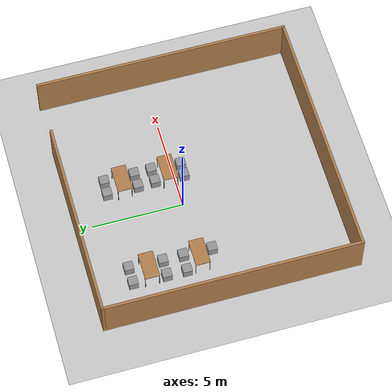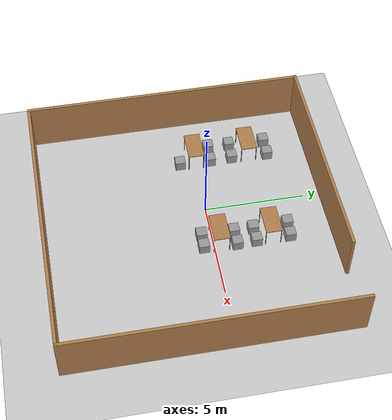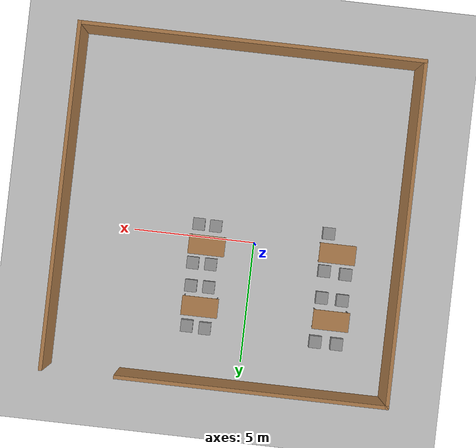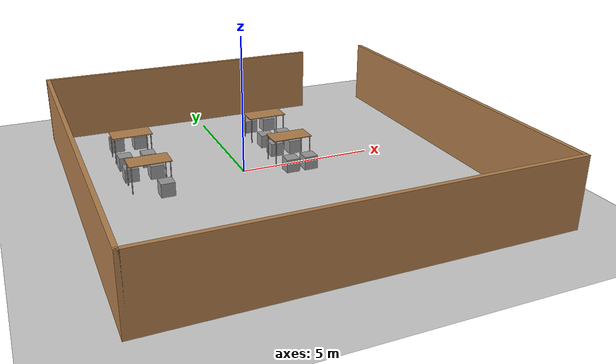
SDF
<sdf version="1.7">
 <world name="default">
  <model name="ground_plane">
   <static>1</static>
   <link name="link">
    <collision name="collision">
     <geometry><plane><normal>0 0 1</normal><size>100 100</size></plane></geometry>
     <surface><friction><ode><mu>100</mu><mu2>50</mu2></ode></friction></surface>
    </collision>
    <visual name="visual">
     <cast_shadows>0</cast_shadows>
     <geometry><plane><normal>0 0 1</normal><size>100 100</size></plane></geometry>
     <material>
      <script><uri>file://media/materials/scripts/gazebo.material</uri><name>Gazebo/Grey</name></script>
     </material>
    </visual>
   </link>
  </model>
  <model name="wall">
   <pose>0.983985 0.059169 0 0 -0 0</pose>
   <link name="Wall_20">
    <collision name="Wall_20_Collision">
     <geometry><box><size>11 0.15 2.5</size></box></geometry>
     <pose>0 0 1.25 0 -0 0</pose>
    </collision>
    <visual name="Wall_20_Visual">
     <pose>0 0 1.25 0 -0 0</pose>
     <geometry><box><size>11 0.15 2.5</size></box></geometry>
     <material>
      <script><uri>file://media/materials/scripts/gazebo.material</uri><name>Gazebo/Wood</name></script>
      <ambient>1 1 1 1</ambient>
     </material>
     <meta><layer>0</layer></meta>
    </visual>
    <pose>-1.5 5.81505 0 0 -0 0</pose>
   </link>
   <link name="Wall_22">
    <collision name="Wall_22_Collision">
     <geometry><box><size>14 0.15 2.5</size></box></geometry>
     <pose>0 0 1.25 0 -0 0</pose>
    </collision>
    <visual name="Wall_22_Visual">
     <pose>0 0 1.25 0 -0 0</pose>
     <geometry><box><size>14 0.15 2.5</size></box></geometry>
     <material>
      <script><uri>file://media/materials/scripts/gazebo.material</uri><name>Gazebo/Wood</name></script>
      <ambient>1 1 1 1</ambient>
     </material>
     <meta><layer>0</layer></meta>
    </visual>
    <pose>-6.925 -1.10995 0 0 -0 -1.5708</pose>
   </link>
   <link name="Wall_23">
    <collision name="Wall_23_Collision">
     <geometry><box><size>14 0.15 2.5</size></box></geometry>
     <pose>0 0 1.25 0 -0 0</pose>
    </collision>
    <visual name="Wall_23_Visual">
     <pose>0 0 1.25 0 -0 0</pose>
     <geometry><box><size>14 0.15 2.5</size></box></geometry>
     <material>
      <script><uri>file://media/materials/scripts/gazebo.material</uri><name>Gazebo/Wood</name></script>
      <ambient>1 1 1 1</ambient>
     </material>
     <meta><layer>0</layer></meta>
    </visual>
    <pose>-0 -8.03495 0 0 -0 0</pose>
   </link>
   <link name="Wall_24">
    <collision name="Wall_24_Collision">
     <geometry><box><size>14 0.15 2.5</size></box></geometry>
     <pose>0 0 1.25 0 -0 0</pose>
    </collision>
    <visual name="Wall_24_Visual">
     <pose>0 0 1.25 0 -0 0</pose>
     <geometry><box><size>14 0.15 2.5</size></box></geometry>
     <material>
      <script><uri>file://media/materials/scripts/gazebo.material</uri><name>Gazebo/Wood</name></script>
      <ambient>1 1 1 1</ambient>
     </material>
     <meta><layer>0</layer></meta>
    </visual>
    <pose>6.925 -1.10995 0 0 -0 1.5708</pose>
   </link>
   <static>1</static>
  </model>
  <model name="table">
   <static>1</static>
   <link name="link">
    <collision name="surface">
     <pose>0 0 1 0 -0 0</pose>
     <geometry><box><size>1.5 0.8 0.03</size></box></geometry>
     <surface><friction><ode><mu>0.6</mu><mu2>0.6</mu2></ode></friction></surface>
    </collision>
    <visual name="visual1">
     <pose>0 0 1 0 -0 0</pose>
     <geometry><box><size>1.5 0.8 0.03</size></box></geometry>
     <material>
      <script><uri>file://media/materials/scripts/gazebo.material</uri><name>Gazebo/Wood</name></script>
     </material>
    </visual>
    <collision name="front_left_leg">
     <pose>0.68 0.38 0.5 0 -0 0</pose>
     <geometry><cylinder><radius>0.02</radius><length>1</length></cylinder></geometry>
    </collision>
    <visual name="front_left_leg">
     <pose>0.68 0.38 0.5 0 -0 0</pose>
     <geometry><cylinder><radius>0.02</radius><length>1</length></cylinder></geometry>
     <material>
      <script><uri>file://media/materials/scripts/gazebo.material</uri><name>Gazebo/Grey</name></script>
     </material>
    </visual>
    <collision name="front_right_leg">
     <pose>0.68 -0.38 0.5 0 -0 0</pose>
     <geometry><cylinder><radius>0.02</radius><length>1</length></cylinder></geometry>
    </collision>
    <visual name="front_right_leg">
     <pose>0.68 -0.38 0.5 0 -0 0</pose>
     <geometry><cylinder><radius>0.02</radius><length>1</length></cylinder></geometry>
     <material>
      <script><uri>file://media/materials/scripts/gazebo.material</uri><name>Gazebo/Grey</name></script>
     </material>
    </visual>
    <collision name="back_right_leg">
     <pose>-0.68 -0.38 0.5 0 -0 0</pose>
     <geometry><cylinder><radius>0.02</radius><length>1</length></cylinder></geometry>
    </collision>
    <visual name="back_right_leg">
     <pose>-0.68 -0.38 0.5 0 -0 0</pose>
     <geometry><cylinder><radius>0.02</radius><length>1</length></cylinder></geometry>
     <material>
      <script><uri>file://media/materials/scripts/gazebo.material</uri><name>Gazebo/Grey</name></script>
     </material>
    </visual>
    <collision name="back_left_leg">
     <pose>-0.68 0.38 0.5 0 -0 0</pose>
     <geometry><cylinder><radius>0.02</radius><length>1</length></cylinder></geometry>
    </collision>
    <visual name="back_left_leg">
     <pose>-0.68 0.38 0.5 0 -0 0</pose>
     <geometry><cylinder><radius>0.02</radius><length>1</length></cylinder></geometry>
     <material>
      <script><uri>file://media/materials/scripts/gazebo.material</uri><name>Gazebo/Grey</name></script>
     </material>
    </visual>
   </link>
   <pose>-3.47502 2.80733 0 0 -0 0</pose>
  </model>
  <model name="table_0">
   <static>1</static>
   <link name="link">
    <collision name="surface">
     <pose>0 0 1 0 -0 0</pose>
     <geometry><box><size>1.5 0.8 0.03</size></box></geometry>
     <surface><friction><ode><mu>0.6</mu><mu2>0.6</mu2></ode></friction></surface>
    </collision>
    <visual name="visual1">
     <pose>0 0 1 0 -0 0</pose>
     <geometry><box><size>1.5 0.8 0.03</size></box></geometry>
     <material>
      <script><uri>file://media/materials/scripts/gazebo.material</uri><name>Gazebo/Wood</name></script>
     </material>
    </visual>
    <collision name="front_left_leg">
     <pose>0.68 0.38 0.5 0 -0 0</pose>
     <geometry><cylinder><radius>0.02</radius><length>1</length></cylinder></geometry>
    </collision>
    <visual name="front_left_leg">
     <pose>0.68 0.38 0.5 0 -0 0</pose>
     <geometry><cylinder><radius>0.02</radius><length>1</length></cylinder></geometry>
     <material>
      <script><uri>file://media/materials/scripts/gazebo.material</uri><name>Gazebo/Grey</name></script>
     </material>
    </visual>
    <collision name="front_right_leg">
     <pose>0.68 -0.38 0.5 0 -0 0</pose>
     <geometry><cylinder><radius>0.02</radius><length>1</length></cylinder></geometry>
    </collision>
    <visual name="front_right_leg">
     <pose>0.68 -0.38 0.5 0 -0 0</pose>
     <geometry><cylinder><radius>0.02</radius><length>1</length></cylinder></geometry>
     <material>
      <script><uri>file://media/materials/scripts/gazebo.material</uri><name>Gazebo/Grey</name></script>
     </material>
    </visual>
    <collision name="back_right_leg">
     <pose>-0.68 -0.38 0.5 0 -0 0</pose>
     <geometry><cylinder><radius>0.02</radius><length>1</length></cylinder></geometry>
    </collision>
    <visual name="back_right_leg">
     <pose>-0.68 -0.38 0.5 0 -0 0</pose>
     <geometry><cylinder><radius>0.02</radius><length>1</length></cylinder></geometry>
     <material>
      <script><uri>file://media/materials/scripts/gazebo.material</uri><name>Gazebo/Grey</name></script>
     </material>
    </visual>
    <collision name="back_left_leg">
     <pose>-0.68 0.38 0.5 0 -0 0</pose>
     <geometry><cylinder><radius>0.02</radius><length>1</length></cylinder></geometry>
    </collision>
    <visual name="back_left_leg">
     <pose>-0.68 0.38 0.5 0 -0 0</pose>
     <geometry><cylinder><radius>0.02</radius><length>1</length></cylinder></geometry>
     <material>
      <script><uri>file://media/materials/scripts/gazebo.material</uri><name>Gazebo/Grey</name></script>
     </material>
    </visual>
   </link>
   <pose>-3.43785 0.065077 0 0 -0 0</pose>
  </model>
  <model name="table_3">
   <static>1</static>
   <link name="link">
    <collision name="surface">
     <pose>0 0 1 0 -0 0</pose>
     <geometry><box><size>1.5 0.8 0.03</size></box></geometry>
     <surface><friction><ode><mu>0.6</mu><mu2>0.6</mu2></ode></friction></surface>
    </collision>
    <visual name="visual1">
     <pose>0 0 1 0 -0 0</pose>
     <geometry><box><size>1.5 0.8 0.03</size></box></geometry>
     <material>
      <script><uri>file://media/materials/scripts/gazebo.material</uri><name>Gazebo/Wood</name></script>
     </material>
    </visual>
    <collision name="front_left_leg">
     <pose>0.68 0.38 0.5 0 -0 0</pose>
     <geometry><cylinder><radius>0.02</radius><length>1</length></cylinder></geometry>
    </collision>
    <visual name="front_left_leg">
     <pose>0.68 0.38 0.5 0 -0 0</pose>
     <geometry><cylinder><radius>0.02</radius><length>1</length></cylinder></geometry>
     <material>
      <script><uri>file://media/materials/scripts/gazebo.material</uri><name>Gazebo/Grey</name></script>
     </material>
    </visual>
    <collision name="front_right_leg">
     <pose>0.68 -0.38 0.5 0 -0 0</pose>
     <geometry><cylinder><radius>0.02</radius><length>1</length></cylinder></geometry>
    </collision>
    <visual name="front_right_leg">
     <pose>0.68 -0.38 0.5 0 -0 0</pose>
     <geometry><cylinder><radius>0.02</radius><length>1</length></cylinder></geometry>
     <material>
      <script><uri>file://media/materials/scripts/gazebo.material</uri><name>Gazebo/Grey</name></script>
     </material>
    </visual>
    <collision name="back_right_leg">
     <pose>-0.68 -0.38 0.5 0 -0 0</pose>
     <geometry><cylinder><radius>0.02</radius><length>1</length></cylinder></geometry>
    </collision>
    <visual name="back_right_leg">
     <pose>-0.68 -0.38 0.5 0 -0 0</pose>
     <geometry><cylinder><radius>0.02</radius><length>1</length></cylinder></geometry>
     <material>
      <script><uri>file://media/materials/scripts/gazebo.material</uri><name>Gazebo/Grey</name></script>
     </material>
    </visual>
    <collision name="back_left_leg">
     <pose>-0.68 0.38 0.5 0 -0 0</pose>
     <geometry><cylinder><radius>0.02</radius><length>1</length></cylinder></geometry>
    </collision>
    <visual name="back_left_leg">
     <pose>-0.68 0.38 0.5 0 -0 0</pose>
     <geometry><cylinder><radius>0.02</radius><length>1</length></cylinder></geometry>
     <material>
      <script><uri>file://media/materials/scripts/gazebo.material</uri><name>Gazebo/Grey</name></script>
     </material>
    </visual>
   </link>
   <pose>1.92457 2.83936 0 0 -0 0</pose>
  </model>
  <model name="table_4">
   <static>1</static>
   <link name="link">
    <collision name="surface">
     <pose>0 0 1 0 -0 0</pose>
     <geometry><box><size>1.5 0.8 0.03</size></box></geometry>
     <surface><friction><ode><mu>0.6</mu><mu2>0.6</mu2></ode></friction></surface>
    </collision>
    <visual name="visual1">
     <pose>0 0 1 0 -0 0</pose>
     <geometry><box><size>1.5 0.8 0.03</size></box></geometry>
     <material>
      <script><uri>file://media/materials/scripts/gazebo.material</uri><name>Gazebo/Wood</name></script>
     </material>
    </visual>
    <collision name="front_left_leg">
     <pose>0.68 0.38 0.5 0 -0 0</pose>
     <geometry><cylinder><radius>0.02</radius><length>1</length></cylinder></geometry>
    </collision>
    <visual name="front_left_leg">
     <pose>0.68 0.38 0.5 0 -0 0</pose>
     <geometry><cylinder><radius>0.02</radius><length>1</length></cylinder></geometry>
     <material>
      <script><uri>file://media/materials/scripts/gazebo.material</uri><name>Gazebo/Grey</name></script>
     </material>
    </visual>
    <collision name="front_right_leg">
     <pose>0.68 -0.38 0.5 0 -0 0</pose>
     <geometry><cylinder><radius>0.02</radius><length>1</length></cylinder></geometry>
    </collision>
    <visual name="front_right_leg">
     <pose>0.68 -0.38 0.5 0 -0 0</pose>
     <geometry><cylinder><radius>0.02</radius><length>1</length></cylinder></geometry>
     <material>
      <script><uri>file://media/materials/scripts/gazebo.material</uri><name>Gazebo/Grey</name></script>
     </material>
    </visual>
    <collision name="back_right_leg">
     <pose>-0.68 -0.38 0.5 0 -0 0</pose>
     <geometry><cylinder><radius>0.02</radius><length>1</length></cylinder></geometry>
    </collision>
    <visual name="back_right_leg">
     <pose>-0.68 -0.38 0.5 0 -0 0</pose>
     <geometry><cylinder><radius>0.02</radius><length>1</length></cylinder></geometry>
     <material>
      <script><uri>file://media/materials/scripts/gazebo.material</uri><name>Gazebo/Grey</name></script>
     </material>
    </visual>
    <collision name="back_left_leg">
     <pose>-0.68 0.38 0.5 0 -0 0</pose>
     <geometry><cylinder><radius>0.02</radius><length>1</length></cylinder></geometry>
    </collision>
    <visual name="back_left_leg">
     <pose>-0.68 0.38 0.5 0 -0 0</pose>
     <geometry><cylinder><radius>0.02</radius><length>1</length></cylinder></geometry>
     <material>
      <script><uri>file://media/materials/scripts/gazebo.material</uri><name>Gazebo/Grey</name></script>
     </material>
    </visual>
   </link>
   <pose>1.92033 0.311512 0 0 -0 0</pose>
  </model>
  <model name="chair">
   <link name="link">
    <inertial>
     <mass>1</mass>
     <inertia>
      <ixx>0.166667</ixx>
      <ixy>0</ixy>
      <ixz>0</ixz>
      <iyy>0.166667</iyy>
      <iyz>0</iyz>
      <izz>0.166667</izz>
     </inertia>
    </inertial>
    <visual name="visual">
     <geometry><box><size>0.5 0.5 0.5</size></box></geometry>
     <material>
      <script><name>Gazebo/Grey</name><uri>file://media/materials/scripts/gazebo.material</uri></script>
      <shader type="pixel"><normal_map>__default__</normal_map></shader>
      <ambient>0.3 0.3 0.3 1</ambient>
      <diffuse>0.7 0.7 0.7 1</diffuse>
      <specular>0.01 0.01 0.01 1</specular>
      <emissive>0 0 0 1</emissive>
     </material>
    </visual>
    <collision name="collision">
     <geometry><box><size>0.5 0.5 0.5</size></box></geometry>
     <surface>
      <friction>
       <ode><mu>1</mu><mu2>1</mu2><fdir1>0 0 0</fdir1><slip1>0</slip1><slip2>0</slip2></ode>
       <torsional>
        <coefficient>1</coefficient>
        <patch_radius>0</patch_radius>
        <surface_radius>0</surface_radius>
        <use_patch_radius>1</use_patch_radius>
        <ode><slip>0</slip></ode>
       </torsional>
      </friction>
      <bounce><restitution_coefficient>0</restitution_coefficient><threshold>1e+06</threshold></bounce>
      <contact>
       <collide_without_contact>0</collide_without_contact>
       <collide_without_contact_bitmask>1</collide_without_contact_bitmask>
       <collide_bitmask>1</collide_bitmask>
       <ode>
        <soft_cfm>0</soft_cfm>
        <soft_erp>0.2</soft_erp>
        <kp>1e+13</kp>
        <kd>1</kd>
        <max_vel>0.01</max_vel>
        <min_depth>0</min_depth>
       </ode>
       <bullet>
        <split_impulse>1</split_impulse>
        <split_impulse_penetration_threshold>-0.01</split_impulse_penetration_threshold>
        <soft_cfm>0</soft_cfm>
        <soft_erp>0.2</soft_erp>
        <kp>1e+13</kp>
        <kd>1</kd>
       </bullet>
      </contact>
     </surface>
    </collision>
   </link>
   <static>0</static>
   <pose>-3.86503 3.7887 0.25 0 -0 0</pose>
  </model>
  <model name="chair_0">
   <link name="link">
    <inertial>
     <mass>1</mass>
     <inertia>
      <ixx>0.166667</ixx>
      <ixy>0</ixy>
      <ixz>0</ixz>
      <iyy>0.166667</iyy>
      <iyz>0</iyz>
      <izz>0.166667</izz>
     </inertia>
    </inertial>
    <visual name="visual">
     <geometry><box><size>0.5 0.5 0.5</size></box></geometry>
     <material>
      <script><name>Gazebo/Grey</name><uri>file://media/materials/scripts/gazebo.material</uri></script>
      <shader type="pixel"><normal_map>__default__</normal_map></shader>
      <ambient>0.3 0.3 0.3 1</ambient>
      <diffuse>0.7 0.7 0.7 1</diffuse>
      <specular>0.01 0.01 0.01 1</specular>
      <emissive>0 0 0 1</emissive>
     </material>
    </visual>
    <collision name="collision">
     <geometry><box><size>0.5 0.5 0.5</size></box></geometry>
     <surface>
      <friction>
       <ode><mu>1</mu><mu2>1</mu2><fdir1>0 0 0</fdir1><slip1>0</slip1><slip2>0</slip2></ode>
       <torsional>
        <coefficient>1</coefficient>
        <patch_radius>0</patch_radius>
        <surface_radius>0</surface_radius>
        <use_patch_radius>1</use_patch_radius>
        <ode><slip>0</slip></ode>
       </torsional>
      </friction>
      <bounce><restitution_coefficient>0</restitution_coefficient><threshold>1e+06</threshold></bounce>
      <contact>
       <collide_without_contact>0</collide_without_contact>
       <collide_without_contact_bitmask>1</collide_without_contact_bitmask>
       <collide_bitmask>1</collide_bitmask>
       <ode>
        <soft_cfm>0</soft_cfm>
        <soft_erp>0.2</soft_erp>
        <kp>1e+13</kp>
        <kd>1</kd>
        <max_vel>0.01</max_vel>
        <min_depth>0</min_depth>
       </ode>
       <bullet>
        <split_impulse>1</split_impulse>
        <split_impulse_penetration_threshold>-0.01</split_impulse_penetration_threshold>
        <soft_cfm>0</soft_cfm>
        <soft_erp>0.2</soft_erp>
        <kp>1e+13</kp>
        <kd>1</kd>
       </bullet>
      </contact>
     </surface>
    </collision>
   </link>
   <static>0</static>
   <pose>-2.97801 3.78938 0.25 0 -0 0</pose>
  </model>
  <model name="chair_1">
   <link name="link">
    <inertial>
     <mass>1</mass>
     <inertia>
      <ixx>0.166667</ixx>
      <ixy>0</ixy>
      <ixz>0</ixz>
      <iyy>0.166667</iyy>
      <iyz>0</iyz>
      <izz>0.166667</izz>
     </inertia>
    </inertial>
    <visual name="visual">
     <geometry><box><size>0.5 0.5 0.5</size></box></geometry>
     <material>
      <script><name>Gazebo/Grey</name><uri>file://media/materials/scripts/gazebo.material</uri></script>
      <shader type="pixel"><normal_map>__default__</normal_map></shader>
      <ambient>0.3 0.3 0.3 1</ambient>
      <diffuse>0.7 0.7 0.7 1</diffuse>
      <specular>0.01 0.01 0.01 1</specular>
      <emissive>0 0 0 1</emissive>
     </material>
    </visual>
    <collision name="collision">
     <geometry><box><size>0.5 0.5 0.5</size></box></geometry>
     <surface>
      <friction>
       <ode><mu>1</mu><mu2>1</mu2><fdir1>0 0 0</fdir1><slip1>0</slip1><slip2>0</slip2></ode>
       <torsional>
        <coefficient>1</coefficient>
        <patch_radius>0</patch_radius>
        <surface_radius>0</surface_radius>
        <use_patch_radius>1</use_patch_radius>
        <ode><slip>0</slip></ode>
       </torsional>
      </friction>
      <bounce><restitution_coefficient>0</restitution_coefficient><threshold>1e+06</threshold></bounce>
      <contact>
       <collide_without_contact>0</collide_without_contact>
       <collide_without_contact_bitmask>1</collide_without_contact_bitmask>
       <collide_bitmask>1</collide_bitmask>
       <ode>
        <soft_cfm>0</soft_cfm>
        <soft_erp>0.2</soft_erp>
        <kp>1e+13</kp>
        <kd>1</kd>
        <max_vel>0.01</max_vel>
        <min_depth>0</min_depth>
       </ode>
       <bullet>
        <split_impulse>1</split_impulse>
        <split_impulse_penetration_threshold>-0.01</split_impulse_penetration_threshold>
        <soft_cfm>0</soft_cfm>
        <soft_erp>0.2</soft_erp>
        <kp>1e+13</kp>
        <kd>1</kd>
       </bullet>
      </contact>
     </surface>
    </collision>
   </link>
   <static>0</static>
   <pose>-3.90663 1.96762 0.25 0 -0 0</pose>
  </model>
  <model name="chair_2">
   <link name="link">
    <inertial>
     <mass>1</mass>
     <inertia>
      <ixx>0.166667</ixx>
      <ixy>0</ixy>
      <ixz>0</ixz>
      <iyy>0.166667</iyy>
      <iyz>0</iyz>
      <izz>0.166667</izz>
     </inertia>
    </inertial>
    <visual name="visual">
     <geometry><box><size>0.5 0.5 0.5</size></box></geometry>
     <material>
      <script><name>Gazebo/Grey</name><uri>file://media/materials/scripts/gazebo.material</uri></script>
      <shader type="pixel"><normal_map>__default__</normal_map></shader>
      <ambient>0.3 0.3 0.3 1</ambient>
      <diffuse>0.7 0.7 0.7 1</diffuse>
      <specular>0.01 0.01 0.01 1</specular>
      <emissive>0 0 0 1</emissive>
     </material>
    </visual>
    <collision name="collision">
     <geometry><box><size>0.5 0.5 0.5</size></box></geometry>
     <surface>
      <friction>
       <ode><mu>1</mu><mu2>1</mu2><fdir1>0 0 0</fdir1><slip1>0</slip1><slip2>0</slip2></ode>
       <torsional>
        <coefficient>1</coefficient>
        <patch_radius>0</patch_radius>
        <surface_radius>0</surface_radius>
        <use_patch_radius>1</use_patch_radius>
        <ode><slip>0</slip></ode>
       </torsional>
      </friction>
      <bounce><restitution_coefficient>0</restitution_coefficient><threshold>1e+06</threshold></bounce>
      <contact>
       <collide_without_contact>0</collide_without_contact>
       <collide_without_contact_bitmask>1</collide_without_contact_bitmask>
       <collide_bitmask>1</collide_bitmask>
       <ode>
        <soft_cfm>0</soft_cfm>
        <soft_erp>0.2</soft_erp>
        <kp>1e+13</kp>
        <kd>1</kd>
        <max_vel>0.01</max_vel>
        <min_depth>0</min_depth>
       </ode>
       <bullet>
        <split_impulse>1</split_impulse>
        <split_impulse_penetration_threshold>-0.01</split_impulse_penetration_threshold>
        <soft_cfm>0</soft_cfm>
        <soft_erp>0.2</soft_erp>
        <kp>1e+13</kp>
        <kd>1</kd>
       </bullet>
      </contact>
     </surface>
    </collision>
   </link>
   <static>0</static>
   <pose>-3.04817 1.94765 0.25 0 -0 0</pose>
  </model>
  <model name="chair_4">
   <link name="link">
    <inertial>
     <mass>1</mass>
     <inertia>
      <ixx>0.166667</ixx>
      <ixy>0</ixy>
      <ixz>0</ixz>
      <iyy>0.166667</iyy>
      <iyz>0</iyz>
      <izz>0.166667</izz>
     </inertia>
    </inertial>
    <visual name="visual">
     <geometry><box><size>0.5 0.5 0.5</size></box></geometry>
     <material>
      <script><name>Gazebo/Grey</name><uri>file://media/materials/scripts/gazebo.material</uri></script>
      <shader type="pixel"><normal_map>__default__</normal_map></shader>
      <ambient>0.3 0.3 0.3 1</ambient>
      <diffuse>0.7 0.7 0.7 1</diffuse>
      <specular>0.01 0.01 0.01 1</specular>
      <emissive>0 0 0 1</emissive>
     </material>
    </visual>
    <collision name="collision">
     <geometry><box><size>0.5 0.5 0.5</size></box></geometry>
     <surface>
      <friction>
       <ode><mu>1</mu><mu2>1</mu2><fdir1>0 0 0</fdir1><slip1>0</slip1><slip2>0</slip2></ode>
       <torsional>
        <coefficient>1</coefficient>
        <patch_radius>0</patch_radius>
        <surface_radius>0</surface_radius>
        <use_patch_radius>1</use_patch_radius>
        <ode><slip>0</slip></ode>
       </torsional>
      </friction>
      <bounce><restitution_coefficient>0</restitution_coefficient><threshold>1e+06</threshold></bounce>
      <contact>
       <collide_without_contact>0</collide_without_contact>
       <collide_without_contact_bitmask>1</collide_without_contact_bitmask>
       <collide_bitmask>1</collide_bitmask>
       <ode>
        <soft_cfm>0</soft_cfm>
        <soft_erp>0.2</soft_erp>
        <kp>1e+13</kp>
        <kd>1</kd>
        <max_vel>0.01</max_vel>
        <min_depth>0</min_depth>
       </ode>
       <bullet>
        <split_impulse>1</split_impulse>
        <split_impulse_penetration_threshold>-0.01</split_impulse_penetration_threshold>
        <soft_cfm>0</soft_cfm>
        <soft_erp>0.2</soft_erp>
        <kp>1e+13</kp>
        <kd>1</kd>
       </bullet>
      </contact>
     </surface>
    </collision>
   </link>
   <static>0</static>
   <pose>-3.04257 -0.73259 0.25 0 -0 0</pose>
  </model>
  <model name="chair_5">
   <link name="link">
    <inertial>
     <mass>1</mass>
     <inertia>
      <ixx>0.166667</ixx>
      <ixy>0</ixy>
      <ixz>0</ixz>
      <iyy>0.166667</iyy>
      <iyz>0</iyz>
      <izz>0.166667</izz>
     </inertia>
    </inertial>
    <visual name="visual">
     <geometry><box><size>0.5 0.5 0.5</size></box></geometry>
     <material>
      <script><name>Gazebo/Grey</name><uri>file://media/materials/scripts/gazebo.material</uri></script>
      <shader type="pixel"><normal_map>__default__</normal_map></shader>
      <ambient>0.3 0.3 0.3 1</ambient>
      <diffuse>0.7 0.7 0.7 1</diffuse>
      <specular>0.01 0.01 0.01 1</specular>
      <emissive>0 0 0 1</emissive>
     </material>
    </visual>
    <collision name="collision">
     <geometry><box><size>0.5 0.5 0.5</size></box></geometry>
     <surface>
      <friction>
       <ode><mu>1</mu><mu2>1</mu2><fdir1>0 0 0</fdir1><slip1>0</slip1><slip2>0</slip2></ode>
       <torsional>
        <coefficient>1</coefficient>
        <patch_radius>0</patch_radius>
        <surface_radius>0</surface_radius>
        <use_patch_radius>1</use_patch_radius>
        <ode><slip>0</slip></ode>
       </torsional>
      </friction>
      <bounce><restitution_coefficient>0</restitution_coefficient><threshold>1e+06</threshold></bounce>
      <contact>
       <collide_without_contact>0</collide_without_contact>
       <collide_without_contact_bitmask>1</collide_without_contact_bitmask>
       <collide_bitmask>1</collide_bitmask>
       <ode>
        <soft_cfm>0</soft_cfm>
        <soft_erp>0.2</soft_erp>
        <kp>1e+13</kp>
        <kd>1</kd>
        <max_vel>0.01</max_vel>
        <min_depth>0</min_depth>
       </ode>
       <bullet>
        <split_impulse>1</split_impulse>
        <split_impulse_penetration_threshold>-0.01</split_impulse_penetration_threshold>
        <soft_cfm>0</soft_cfm>
        <soft_erp>0.2</soft_erp>
        <kp>1e+13</kp>
        <kd>1</kd>
       </bullet>
      </contact>
     </surface>
    </collision>
   </link>
   <static>0</static>
   <pose>-3.92308 0.880823 0.25 0 -0 0</pose>
  </model>
  <model name="chair_6">
   <link name="link">
    <inertial>
     <mass>1</mass>
     <inertia>
      <ixx>0.166667</ixx>
      <ixy>0</ixy>
      <ixz>0</ixz>
      <iyy>0.166667</iyy>
      <iyz>0</iyz>
      <izz>0.166667</izz>
     </inertia>
    </inertial>
    <visual name="visual">
     <geometry><box><size>0.5 0.5 0.5</size></box></geometry>
     <material>
      <script><name>Gazebo/Grey</name><uri>file://media/materials/scripts/gazebo.material</uri></script>
      <shader type="pixel"><normal_map>__default__</normal_map></shader>
      <ambient>0.3 0.3 0.3 1</ambient>
      <diffuse>0.7 0.7 0.7 1</diffuse>
      <specular>0.01 0.01 0.01 1</specular>
      <emissive>0 0 0 1</emissive>
     </material>
    </visual>
    <collision name="collision">
     <geometry><box><size>0.5 0.5 0.5</size></box></geometry>
     <surface>
      <friction>
       <ode><mu>1</mu><mu2>1</mu2><fdir1>0 0 0</fdir1><slip1>0</slip1><slip2>0</slip2></ode>
       <torsional>
        <coefficient>1</coefficient>
        <patch_radius>0</patch_radius>
        <surface_radius>0</surface_radius>
        <use_patch_radius>1</use_patch_radius>
        <ode><slip>0</slip></ode>
       </torsional>
      </friction>
      <bounce><restitution_coefficient>0</restitution_coefficient><threshold>1e+06</threshold></bounce>
      <contact>
       <collide_without_contact>0</collide_without_contact>
       <collide_without_contact_bitmask>1</collide_without_contact_bitmask>
       <collide_bitmask>1</collide_bitmask>
       <ode>
        <soft_cfm>0</soft_cfm>
        <soft_erp>0.2</soft_erp>
        <kp>1e+13</kp>
        <kd>1</kd>
        <max_vel>0.01</max_vel>
        <min_depth>0</min_depth>
       </ode>
       <bullet>
        <split_impulse>1</split_impulse>
        <split_impulse_penetration_threshold>-0.01</split_impulse_penetration_threshold>
        <soft_cfm>0</soft_cfm>
        <soft_erp>0.2</soft_erp>
        <kp>1e+13</kp>
        <kd>1</kd>
       </bullet>
      </contact>
     </surface>
    </collision>
   </link>
   <static>0</static>
   <pose>-3.02496 0.836207 0.25 0 -0 0</pose>
  </model>
  <model name="chair_23">
   <link name="link">
    <inertial>
     <mass>1</mass>
     <inertia>
      <ixx>0.166667</ixx>
      <ixy>0</ixy>
      <ixz>0</ixz>
      <iyy>0.166667</iyy>
      <iyz>0</iyz>
      <izz>0.166667</izz>
     </inertia>
    </inertial>
    <visual name="visual">
     <geometry><box><size>0.5 0.5 0.5</size></box></geometry>
     <material>
      <script><name>Gazebo/Grey</name><uri>file://media/materials/scripts/gazebo.material</uri></script>
      <shader type="pixel"><normal_map>__default__</normal_map></shader>
      <ambient>0.3 0.3 0.3 1</ambient>
      <diffuse>0.7 0.7 0.7 1</diffuse>
      <specular>0.01 0.01 0.01 1</specular>
      <emissive>0 0 0 1</emissive>
     </material>
    </visual>
    <collision name="collision">
     <geometry><box><size>0.5 0.5 0.5</size></box></geometry>
     <surface>
      <friction>
       <ode><mu>1</mu><mu2>1</mu2><fdir1>0 0 0</fdir1><slip1>0</slip1><slip2>0</slip2></ode>
       <torsional>
        <coefficient>1</coefficient>
        <patch_radius>0</patch_radius>
        <surface_radius>0</surface_radius>
        <use_patch_radius>1</use_patch_radius>
        <ode><slip>0</slip></ode>
       </torsional>
      </friction>
      <bounce><restitution_coefficient>0</restitution_coefficient><threshold>1e+06</threshold></bounce>
      <contact>
       <collide_without_contact>0</collide_without_contact>
       <collide_without_contact_bitmask>1</collide_without_contact_bitmask>
       <collide_bitmask>1</collide_bitmask>
       <ode>
        <soft_cfm>0</soft_cfm>
        <soft_erp>0.2</soft_erp>
        <kp>1e+13</kp>
        <kd>1</kd>
        <max_vel>0.01</max_vel>
        <min_depth>0</min_depth>
       </ode>
       <bullet>
        <split_impulse>1</split_impulse>
        <split_impulse_penetration_threshold>-0.01</split_impulse_penetration_threshold>
        <soft_cfm>0</soft_cfm>
        <soft_erp>0.2</soft_erp>
        <kp>1e+13</kp>
        <kd>1</kd>
       </bullet>
      </contact>
     </surface>
    </collision>
   </link>
   <static>0</static>
   <pose>1.6463 -0.511991 0.25 0 -0 0</pose>
  </model>
  <model name="chair_24">
   <link name="link">
    <inertial>
     <mass>1</mass>
     <inertia>
      <ixx>0.166667</ixx>
      <ixy>0</ixy>
      <ixz>0</ixz>
      <iyy>0.166667</iyy>
      <iyz>0</iyz>
      <izz>0.166667</izz>
     </inertia>
    </inertial>
    <visual name="visual">
     <geometry><box><size>0.5 0.5 0.5</size></box></geometry>
     <material>
      <script><name>Gazebo/Grey</name><uri>file://media/materials/scripts/gazebo.material</uri></script>
      <shader type="pixel"><normal_map>__default__</normal_map></shader>
      <ambient>0.3 0.3 0.3 1</ambient>
      <diffuse>0.7 0.7 0.7 1</diffuse>
      <specular>0.01 0.01 0.01 1</specular>
      <emissive>0 0 0 1</emissive>
     </material>
    </visual>
    <collision name="collision">
     <geometry><box><size>0.5 0.5 0.5</size></box></geometry>
     <surface>
      <friction>
       <ode><mu>1</mu><mu2>1</mu2><fdir1>0 0 0</fdir1><slip1>0</slip1><slip2>0</slip2></ode>
       <torsional>
        <coefficient>1</coefficient>
        <patch_radius>0</patch_radius>
        <surface_radius>0</surface_radius>
        <use_patch_radius>1</use_patch_radius>
        <ode><slip>0</slip></ode>
       </torsional>
      </friction>
      <bounce><restitution_coefficient>0</restitution_coefficient><threshold>1e+06</threshold></bounce>
      <contact>
       <collide_without_contact>0</collide_without_contact>
       <collide_without_contact_bitmask>1</collide_without_contact_bitmask>
       <collide_bitmask>1</collide_bitmask>
       <ode>
        <soft_cfm>0</soft_cfm>
        <soft_erp>0.2</soft_erp>
        <kp>1e+13</kp>
        <kd>1</kd>
        <max_vel>0.01</max_vel>
        <min_depth>0</min_depth>
       </ode>
       <bullet>
        <split_impulse>1</split_impulse>
        <split_impulse_penetration_threshold>-0.01</split_impulse_penetration_threshold>
        <soft_cfm>0</soft_cfm>
        <soft_erp>0.2</soft_erp>
        <kp>1e+13</kp>
        <kd>1</kd>
       </bullet>
      </contact>
     </surface>
    </collision>
   </link>
   <static>0</static>
   <pose>2.35134 -0.523304 0.25 0 -0 0</pose>
  </model>
  <model name="chair_25">
   <link name="link">
    <inertial>
     <mass>1</mass>
     <inertia>
      <ixx>0.166667</ixx>
      <ixy>0</ixy>
      <ixz>0</ixz>
      <iyy>0.166667</iyy>
      <iyz>0</iyz>
      <izz>0.166667</izz>
     </inertia>
    </inertial>
    <visual name="visual">
     <geometry><box><size>0.5 0.5 0.5</size></box></geometry>
     <material>
      <script><name>Gazebo/Grey</name><uri>file://media/materials/scripts/gazebo.material</uri></script>
      <shader type="pixel"><normal_map>__default__</normal_map></shader>
      <ambient>0.3 0.3 0.3 1</ambient>
      <diffuse>0.7 0.7 0.7 1</diffuse>
      <specular>0.01 0.01 0.01 1</specular>
      <emissive>0 0 0 1</emissive>
     </material>
    </visual>
    <collision name="collision">
     <geometry><box><size>0.5 0.5 0.5</size></box></geometry>
     <surface>
      <friction>
       <ode><mu>1</mu><mu2>1</mu2><fdir1>0 0 0</fdir1><slip1>0</slip1><slip2>0</slip2></ode>
       <torsional>
        <coefficient>1</coefficient>
        <patch_radius>0</patch_radius>
        <surface_radius>0</surface_radius>
        <use_patch_radius>1</use_patch_radius>
        <ode><slip>0</slip></ode>
       </torsional>
      </friction>
      <bounce><restitution_coefficient>0</restitution_coefficient><threshold>1e+06</threshold></bounce>
      <contact>
       <collide_without_contact>0</collide_without_contact>
       <collide_without_contact_bitmask>1</collide_without_contact_bitmask>
       <collide_bitmask>1</collide_bitmask>
       <ode>
        <soft_cfm>0</soft_cfm>
        <soft_erp>0.2</soft_erp>
        <kp>1e+13</kp>
        <kd>1</kd>
        <max_vel>0.01</max_vel>
        <min_depth>0</min_depth>
       </ode>
       <bullet>
        <split_impulse>1</split_impulse>
        <split_impulse_penetration_threshold>-0.01</split_impulse_penetration_threshold>
        <soft_cfm>0</soft_cfm>
        <soft_erp>0.2</soft_erp>
        <kp>1e+13</kp>
        <kd>1</kd>
       </bullet>
      </contact>
     </surface>
    </collision>
   </link>
   <static>0</static>
   <pose>1.68139 1.08772 0.25 0 -0 0</pose>
  </model>
  <model name="chair_26">
   <link name="link">
    <inertial>
     <mass>1</mass>
     <inertia>
      <ixx>0.166667</ixx>
      <ixy>0</ixy>
      <ixz>0</ixz>
      <iyy>0.166667</iyy>
      <iyz>0</iyz>
      <izz>0.166667</izz>
     </inertia>
    </inertial>
    <visual name="visual">
     <geometry><box><size>0.5 0.5 0.5</size></box></geometry>
     <material>
      <script><name>Gazebo/Grey</name><uri>file://media/materials/scripts/gazebo.material</uri></script>
      <shader type="pixel"><normal_map>__default__</normal_map></shader>
      <ambient>0.3 0.3 0.3 1</ambient>
      <diffuse>0.7 0.7 0.7 1</diffuse>
      <specular>0.01 0.01 0.01 1</specular>
      <emissive>0 0 0 1</emissive>
     </material>
    </visual>
    <collision name="collision">
     <geometry><box><size>0.5 0.5 0.5</size></box></geometry>
     <surface>
      <friction>
       <ode><mu>1</mu><mu2>1</mu2><fdir1>0 0 0</fdir1><slip1>0</slip1><slip2>0</slip2></ode>
       <torsional>
        <coefficient>1</coefficient>
        <patch_radius>0</patch_radius>
        <surface_radius>0</surface_radius>
        <use_patch_radius>1</use_patch_radius>
        <ode><slip>0</slip></ode>
       </torsional>
      </friction>
      <bounce><restitution_coefficient>0</restitution_coefficient><threshold>1e+06</threshold></bounce>
      <contact>
       <collide_without_contact>0</collide_without_contact>
       <collide_without_contact_bitmask>1</collide_without_contact_bitmask>
       <collide_bitmask>1</collide_bitmask>
       <ode>
        <soft_cfm>0</soft_cfm>
        <soft_erp>0.2</soft_erp>
        <kp>1e+13</kp>
        <kd>1</kd>
        <max_vel>0.01</max_vel>
        <min_depth>0</min_depth>
       </ode>
       <bullet>
        <split_impulse>1</split_impulse>
        <split_impulse_penetration_threshold>-0.01</split_impulse_penetration_threshold>
        <soft_cfm>0</soft_cfm>
        <soft_erp>0.2</soft_erp>
        <kp>1e+13</kp>
        <kd>1</kd>
       </bullet>
      </contact>
     </surface>
    </collision>
   </link>
   <static>0</static>
   <pose>2.42958 1.10106 0.25 0 -0 0</pose>
  </model>
  <model name="chair_27">
   <link name="link">
    <inertial>
     <mass>1</mass>
     <inertia>
      <ixx>0.166667</ixx>
      <ixy>0</ixy>
      <ixz>0</ixz>
      <iyy>0.166667</iyy>
      <iyz>0</iyz>
      <izz>0.166667</izz>
     </inertia>
    </inertial>
    <visual name="visual">
     <geometry><box><size>0.5 0.5 0.5</size></box></geometry>
     <material>
      <script><name>Gazebo/Grey</name><uri>file://media/materials/scripts/gazebo.material</uri></script>
      <shader type="pixel"><normal_map>__default__</normal_map></shader>
      <ambient>0.3 0.3 0.3 1</ambient>
      <diffuse>0.7 0.7 0.7 1</diffuse>
      <specular>0.01 0.01 0.01 1</specular>
      <emissive>0 0 0 1</emissive>
     </material>
    </visual>
    <collision name="collision">
     <geometry><box><size>0.5 0.5 0.5</size></box></geometry>
     <surface>
      <friction>
       <ode><mu>1</mu><mu2>1</mu2><fdir1>0 0 0</fdir1><slip1>0</slip1><slip2>0</slip2></ode>
       <torsional>
        <coefficient>1</coefficient>
        <patch_radius>0</patch_radius>
        <surface_radius>0</surface_radius>
        <use_patch_radius>1</use_patch_radius>
        <ode><slip>0</slip></ode>
       </torsional>
      </friction>
      <bounce><restitution_coefficient>0</restitution_coefficient><threshold>1e+06</threshold></bounce>
      <contact>
       <collide_without_contact>0</collide_without_contact>
       <collide_without_contact_bitmask>1</collide_without_contact_bitmask>
       <collide_bitmask>1</collide_bitmask>
       <ode>
        <soft_cfm>0</soft_cfm>
        <soft_erp>0.2</soft_erp>
        <kp>1e+13</kp>
        <kd>1</kd>
        <max_vel>0.01</max_vel>
        <min_depth>0</min_depth>
       </ode>
       <bullet>
        <split_impulse>1</split_impulse>
        <split_impulse_penetration_threshold>-0.01</split_impulse_penetration_threshold>
        <soft_cfm>0</soft_cfm>
        <soft_erp>0.2</soft_erp>
        <kp>1e+13</kp>
        <kd>1</kd>
       </bullet>
      </contact>
     </surface>
    </collision>
   </link>
   <static>0</static>
   <pose>1.6585 2.03978 0.25 0 -0 0</pose>
  </model>
  <model name="chair_28">
   <link name="link">
    <inertial>
     <mass>1</mass>
     <inertia>
      <ixx>0.166667</ixx>
      <ixy>0</ixy>
      <ixz>0</ixz>
      <iyy>0.166667</iyy>
      <iyz>0</iyz>
      <izz>0.166667</izz>
     </inertia>
    </inertial>
    <visual name="visual">
     <geometry><box><size>0.5 0.5 0.5</size></box></geometry>
     <material>
      <script><name>Gazebo/Grey</name><uri>file://media/materials/scripts/gazebo.material</uri></script>
      <shader type="pixel"><normal_map>__default__</normal_map></shader>
      <ambient>0.3 0.3 0.3 1</ambient>
      <diffuse>0.7 0.7 0.7 1</diffuse>
      <specular>0.01 0.01 0.01 1</specular>
      <emissive>0 0 0 1</emissive>
     </material>
    </visual>
    <collision name="collision">
     <geometry><box><size>0.5 0.5 0.5</size></box></geometry>
     <surface>
      <friction>
       <ode><mu>1</mu><mu2>1</mu2><fdir1>0 0 0</fdir1><slip1>0</slip1><slip2>0</slip2></ode>
       <torsional>
        <coefficient>1</coefficient>
        <patch_radius>0</patch_radius>
        <surface_radius>0</surface_radius>
        <use_patch_radius>1</use_patch_radius>
        <ode><slip>0</slip></ode>
       </torsional>
      </friction>
      <bounce><restitution_coefficient>0</restitution_coefficient><threshold>1e+06</threshold></bounce>
      <contact>
       <collide_without_contact>0</collide_without_contact>
       <collide_without_contact_bitmask>1</collide_without_contact_bitmask>
       <collide_bitmask>1</collide_bitmask>
       <ode>
        <soft_cfm>0</soft_cfm>
        <soft_erp>0.2</soft_erp>
        <kp>1e+13</kp>
        <kd>1</kd>
        <max_vel>0.01</max_vel>
        <min_depth>0</min_depth>
       </ode>
       <bullet>
        <split_impulse>1</split_impulse>
        <split_impulse_penetration_threshold>-0.01</split_impulse_penetration_threshold>
        <soft_cfm>0</soft_cfm>
        <soft_erp>0.2</soft_erp>
        <kp>1e+13</kp>
        <kd>1</kd>
       </bullet>
      </contact>
     </surface>
    </collision>
   </link>
   <static>0</static>
   <pose>2.40173 2.05192 0.25 0 -0 0</pose>
  </model>
  <model name="chair_29">
   <link name="link">
    <inertial>
     <mass>1</mass>
     <inertia>
      <ixx>0.166667</ixx>
      <ixy>0</ixy>
      <ixz>0</ixz>
      <iyy>0.166667</iyy>
      <iyz>0</iyz>
      <izz>0.166667</izz>
     </inertia>
    </inertial>
    <visual name="visual">
     <geometry><box><size>0.5 0.5 0.5</size></box></geometry>
     <material>
      <script><name>Gazebo/Grey</name><uri>file://media/materials/scripts/gazebo.material</uri></script>
      <shader type="pixel"><normal_map>__default__</normal_map></shader>
      <ambient>0.3 0.3 0.3 1</ambient>
      <diffuse>0.7 0.7 0.7 1</diffuse>
      <specular>0.01 0.01 0.01 1</specular>
      <emissive>0 0 0 1</emissive>
     </material>
    </visual>
    <collision name="collision">
     <geometry><box><size>0.5 0.5 0.5</size></box></geometry>
     <surface>
      <friction>
       <ode><mu>1</mu><mu2>1</mu2><fdir1>0 0 0</fdir1><slip1>0</slip1><slip2>0</slip2></ode>
       <torsional>
        <coefficient>1</coefficient>
        <patch_radius>0</patch_radius>
        <surface_radius>0</surface_radius>
        <use_patch_radius>1</use_patch_radius>
        <ode><slip>0</slip></ode>
       </torsional>
      </friction>
      <bounce><restitution_coefficient>0</restitution_coefficient><threshold>1e+06</threshold></bounce>
      <contact>
       <collide_without_contact>0</collide_without_contact>
       <collide_without_contact_bitmask>1</collide_without_contact_bitmask>
       <collide_bitmask>1</collide_bitmask>
       <ode>
        <soft_cfm>0</soft_cfm>
        <soft_erp>0.2</soft_erp>
        <kp>1e+13</kp>
        <kd>1</kd>
        <max_vel>0.01</max_vel>
        <min_depth>0</min_depth>
       </ode>
       <bullet>
        <split_impulse>1</split_impulse>
        <split_impulse_penetration_threshold>-0.01</split_impulse_penetration_threshold>
        <soft_cfm>0</soft_cfm>
        <soft_erp>0.2</soft_erp>
        <kp>1e+13</kp>
        <kd>1</kd>
       </bullet>
      </contact>
     </surface>
    </collision>
   </link>
   <static>0</static>
   <pose>1.63041 3.7528 0.25 0 -0 0</pose>
  </model>
  <model name="chair_30">
   <link name="link">
    <inertial>
     <mass>1</mass>
     <inertia>
      <ixx>0.166667</ixx>
      <ixy>0</ixy>
      <ixz>0</ixz>
      <iyy>0.166667</iyy>
      <iyz>0</iyz>
      <izz>0.166667</izz>
     </inertia>
    </inertial>
    <visual name="visual">
     <geometry><box><size>0.5 0.5 0.5</size></box></geometry>
     <material>
      <script><name>Gazebo/Grey</name><uri>file://media/materials/scripts/gazebo.material</uri></script>
      <shader type="pixel"><normal_map>__default__</normal_map></shader>
      <ambient>0.3 0.3 0.3 1</ambient>
      <diffuse>0.7 0.7 0.7 1</diffuse>
      <specular>0.01 0.01 0.01 1</specular>
      <emissive>0 0 0 1</emissive>
     </material>
    </visual>
    <collision name="collision">
     <geometry><box><size>0.5 0.5 0.5</size></box></geometry>
     <surface>
      <friction>
       <ode><mu>1</mu><mu2>1</mu2><fdir1>0 0 0</fdir1><slip1>0</slip1><slip2>0</slip2></ode>
       <torsional>
        <coefficient>1</coefficient>
        <patch_radius>0</patch_radius>
        <surface_radius>0</surface_radius>
        <use_patch_radius>1</use_patch_radius>
        <ode><slip>0</slip></ode>
       </torsional>
      </friction>
      <bounce><restitution_coefficient>0</restitution_coefficient><threshold>1e+06</threshold></bounce>
      <contact>
       <collide_without_contact>0</collide_without_contact>
       <collide_without_contact_bitmask>1</collide_without_contact_bitmask>
       <collide_bitmask>1</collide_bitmask>
       <ode>
        <soft_cfm>0</soft_cfm>
        <soft_erp>0.2</soft_erp>
        <kp>1e+13</kp>
        <kd>1</kd>
        <max_vel>0.01</max_vel>
        <min_depth>0</min_depth>
       </ode>
       <bullet>
        <split_impulse>1</split_impulse>
        <split_impulse_penetration_threshold>-0.01</split_impulse_penetration_threshold>
        <soft_cfm>0</soft_cfm>
        <soft_erp>0.2</soft_erp>
        <kp>1e+13</kp>
        <kd>1</kd>
       </bullet>
      </contact>
     </surface>
    </collision>
   </link>
   <static>0</static>
   <pose>2.38581 3.72169 0.25 0 -0 0</pose>
  </model>
 </world>
</sdf>
